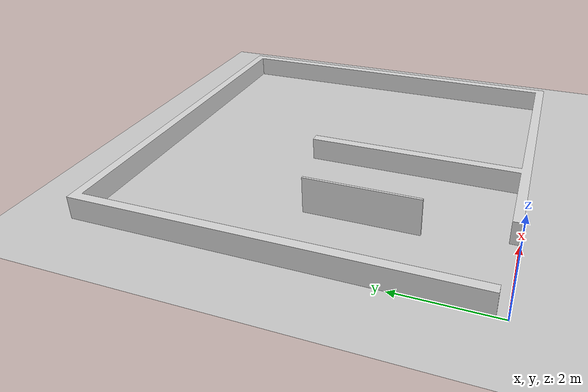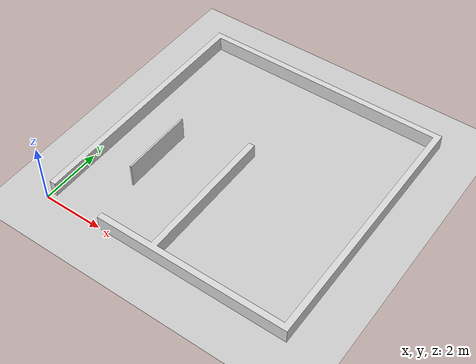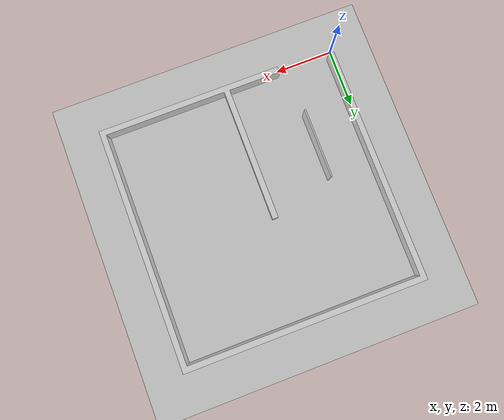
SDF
<!-- worlds/maze.world -->
<sdf version="1.6">
  <world name="default">
    <include><uri>model://sun</uri></include>
    <include><uri>model://ground_plane</uri></include>
    <include>
      <uri>model://maze</uri>
      <pose>4.2 4.2 0 0 0 0</pose>
    </include>
  </world>
</sdf>

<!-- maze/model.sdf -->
<!-- models/maze/model.sdf -->
<sdf version="1.6">
  <model name="maze">
    <static>true</static>
    <link name="maze_link">
      <visual name="maze_visual">
        <geometry>
          <mesh>
            <uri>model://maze/meshes/ground.dae</uri>
            <scale>0.001 0.001 0.001</scale>
          </mesh>
        </geometry>
      </visual>
      <collision name="maze_collision">
        <geometry>
          <mesh>
            <uri>model://maze/meshes/ground.dae</uri>
            <scale>0.001 0.001 0.001</scale>
          </mesh>
        </geometry>
      </collision>
    </link>
  </model>
</sdf>
